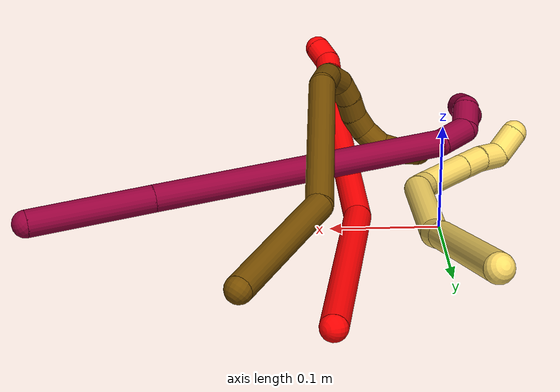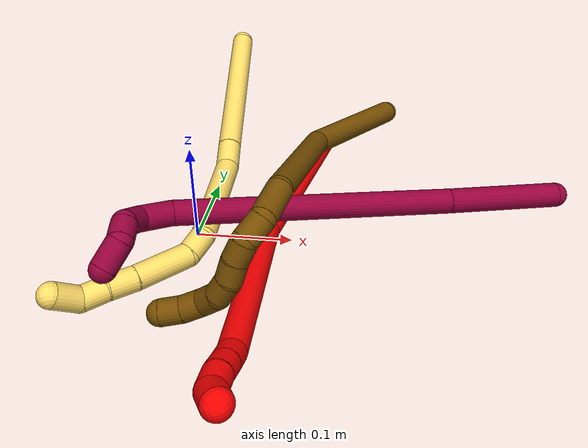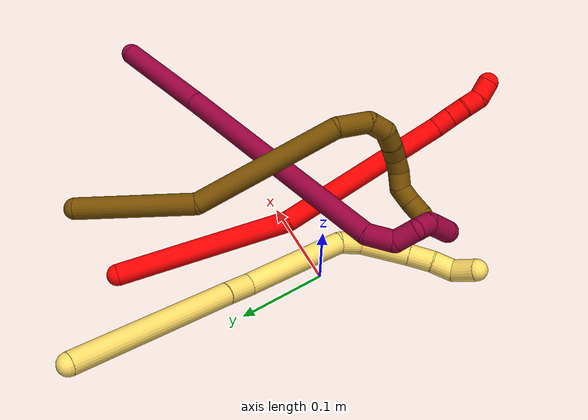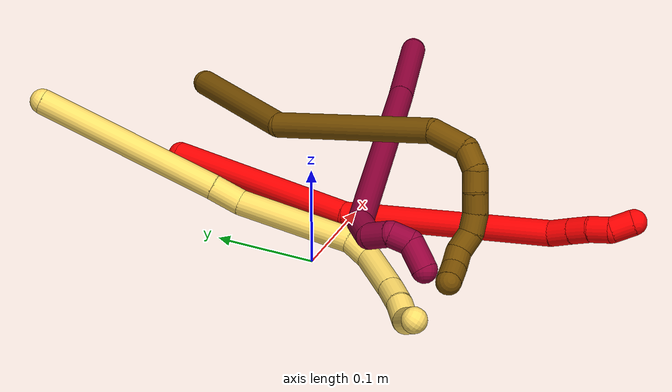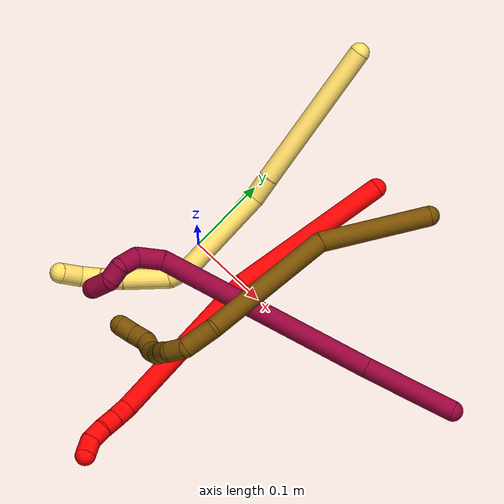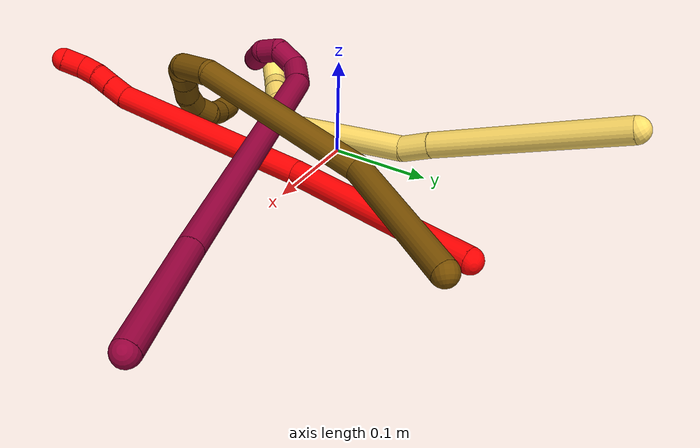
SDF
<sdf version="1.7">
 <world name="default">
  <model name="2">
   <static>0</static>
   <link name="2">
    <collision name="collision-cylinder-e_1_1_4">
     <pose>-0.006441 -0.065038 0.077579 0.697688 -0.063538 -0.023117</pose>
     <geometry><cylinder><radius>0.0125</radius><length>0.202879</length></cylinder></geometry>
     <surface>
      <friction><ode><mu>1.16</mu><mu2>1.16</mu2><slip1>0</slip1><slip2>0</slip2></ode></friction>
      <contact><ode><kp>1e+06</kp><kd>1</kd><max_vel>0</max_vel><min_depth>0.001</min_depth></ode></contact>
     </surface>
    </collision>
    <visual name="visual-cylinder-e_1_1_4">
     <pose>-0.006441 -0.065038 0.077579 0.697688 -0.063538 -0.023117</pose>
     <geometry><cylinder><radius>0.0125</radius><length>0.202879</length></cylinder></geometry>
     <material><ambient>1 0 0 1</ambient></material>
    </visual>
    <collision name="collision-cylinder-e_2_4_5">
     <pose>-0.012893 -0.216288 0.216952 0.948904 -0.000104 -5.3e-05</pose>
     <geometry><cylinder><radius>0.0125</radius><length>0.212141</length></cylinder></geometry>
     <surface>
      <friction><ode><mu>1.16</mu><mu2>1.16</mu2><slip1>0</slip1><slip2>0</slip2></ode></friction>
      <contact><ode><kp>1e+06</kp><kd>1</kd><max_vel>0</max_vel><min_depth>0.001</min_depth></ode></contact>
     </surface>
    </collision>
    <visual name="visual-cylinder-e_2_4_5">
     <pose>-0.012893 -0.216288 0.216952 0.948904 -0.000104 -5.3e-05</pose>
     <geometry><cylinder><radius>0.0125</radius><length>0.212141</length></cylinder></geometry>
     <material><ambient>1 0 0 1</ambient></material>
    </visual>
    <collision name="collision-cylinder-e_3_5_6">
     <pose>-0.010224 -0.311122 0.284792 0.959309 0.249205 0.13012</pose>
     <geometry><cylinder><radius>0.0125</radius><length>0.021735</length></cylinder></geometry>
     <surface>
      <friction><ode><mu>1.16</mu><mu2>1.16</mu2><slip1>0</slip1><slip2>0</slip2></ode></friction>
      <contact><ode><kp>1e+06</kp><kd>1</kd><max_vel>0</max_vel><min_depth>0.001</min_depth></ode></contact>
     </surface>
    </collision>
    <visual name="visual-cylinder-e_3_5_6">
     <pose>-0.010224 -0.311122 0.284792 0.959309 0.249205 0.13012</pose>
     <geometry><cylinder><radius>0.0125</radius><length>0.021735</length></cylinder></geometry>
     <material><ambient>1 0 0 1</ambient></material>
    </visual>
    <collision name="collision-cylinder-e_4_6_7">
     <pose>-0.005039 -0.327556 0.296635 0.932325 0.252033 0.127313</pose>
     <geometry><cylinder><radius>0.0125</radius><length>0.020088</length></cylinder></geometry>
     <surface>
      <friction><ode><mu>1.16</mu><mu2>1.16</mu2><slip1>0</slip1><slip2>0</slip2></ode></friction>
      <contact><ode><kp>1e+06</kp><kd>1</kd><max_vel>0</max_vel><min_depth>0.001</min_depth></ode></contact>
     </surface>
    </collision>
    <visual name="visual-cylinder-e_4_6_7">
     <pose>-0.005039 -0.327556 0.296635 0.932325 0.252033 0.127313</pose>
     <geometry><cylinder><radius>0.0125</radius><length>0.020088</length></cylinder></geometry>
     <material><ambient>1 0 0 1</ambient></material>
    </visual>
    <collision name="collision-cylinder-e_5_7_8">
     <pose>-0.001655 -0.343928 0.308673 0.940886 0.082744 0.042095</pose>
     <geometry><cylinder><radius>0.0125</radius><length>0.021262</length></cylinder></geometry>
     <surface>
      <friction><ode><mu>1.16</mu><mu2>1.16</mu2><slip1>0</slip1><slip2>0</slip2></ode></friction>
      <contact><ode><kp>1e+06</kp><kd>1</kd><max_vel>0</max_vel><min_depth>0.001</min_depth></ode></contact>
     </surface>
    </collision>
    <visual name="visual-cylinder-e_5_7_8">
     <pose>-0.001655 -0.343928 0.308673 0.940886 0.082744 0.042095</pose>
     <geometry><cylinder><radius>0.0125</radius><length>0.021262</length></cylinder></geometry>
     <material><ambient>1 0 0 1</ambient></material>
    </visual>
    <collision name="collision-cylinder-e_6_8_2">
     <pose>0.000784 -0.363175 0.316717 1.40365 0.143059 0.121003</pose>
     <geometry><cylinder><radius>0.0125</radius><length>0.021896</length></cylinder></geometry>
     <surface>
      <friction><ode><mu>1.16</mu><mu2>1.16</mu2><slip1>0</slip1><slip2>0</slip2></ode></friction>
      <contact><ode><kp>1e+06</kp><kd>1</kd><max_vel>0</max_vel><min_depth>0.001</min_depth></ode></contact>
     </surface>
    </collision>
    <visual name="visual-cylinder-e_6_8_2">
     <pose>0.000784 -0.363175 0.316717 1.40365 0.143059 0.121003</pose>
     <geometry><cylinder><radius>0.0125</radius><length>0.021896</length></cylinder></geometry>
     <material><ambient>1 0 0 1</ambient></material>
    </visual>
    <collision name="collision-sphere-2">
     <pose>0.002345 -0.37386 0.318519 0 -0 0</pose>
     <geometry><sphere><radius>0.0125</radius></sphere></geometry>
     <surface>
      <friction><ode><mu>1.16</mu><mu2>1.16</mu2><slip1>0</slip1><slip2>0</slip2></ode></friction>
      <contact><ode><kp>1e+06</kp><kd>1</kd><max_vel>0</max_vel><min_depth>0.001</min_depth></ode></contact>
     </surface>
    </collision>
    <visual name="visual-sphere-2">
     <pose>0.002345 -0.37386 0.318519 0 -0 0</pose>
     <geometry><sphere><radius>0.0125</radius></sphere></geometry>
     <material><ambient>1 0 0 1</ambient></material>
    </visual>
    <collision name="collision-sphere-4">
     <pose>-0.012882 -0.130076 0.155158 0 -0 0</pose>
     <geometry><sphere><radius>0.0125</radius></sphere></geometry>
     <surface>
      <friction><ode><mu>1.16</mu><mu2>1.16</mu2><slip1>0</slip1><slip2>0</slip2></ode></friction>
      <contact><ode><kp>1e+06</kp><kd>1</kd><max_vel>0</max_vel><min_depth>0.001</min_depth></ode></contact>
     </surface>
    </collision>
    <visual name="visual-sphere-4">
     <pose>-0.012882 -0.130076 0.155158 0 -0 0</pose>
     <geometry><sphere><radius>0.0125</radius></sphere></geometry>
     <material><ambient>1 0 0 1</ambient></material>
    </visual>
    <collision name="collision-sphere-1">
     <geometry><sphere><radius>0.0125</radius></sphere></geometry>
     <surface>
      <friction><ode><mu>1.16</mu><mu2>1.16</mu2><slip1>0</slip1><slip2>0</slip2></ode></friction>
      <contact><ode><kp>1e+06</kp><kd>1</kd><max_vel>0</max_vel><min_depth>0.001</min_depth></ode></contact>
     </surface>
    </collision>
    <visual name="visual-sphere-1">
     <geometry><sphere><radius>0.0125</radius></sphere></geometry>
     <material><ambient>1 0 0 1</ambient></material>
    </visual>
    <collision name="collision-sphere-8">
     <pose>-0.000777 -0.35249 0.314914 0 -0 0</pose>
     <geometry><sphere><radius>0.0125</radius></sphere></geometry>
     <surface>
      <friction><ode><mu>1.16</mu><mu2>1.16</mu2><slip1>0</slip1><slip2>0</slip2></ode></friction>
      <contact><ode><kp>1e+06</kp><kd>1</kd><max_vel>0</max_vel><min_depth>0.001</min_depth></ode></contact>
     </surface>
    </collision>
    <visual name="visual-sphere-8">
     <pose>-0.000777 -0.35249 0.314914 0 -0 0</pose>
     <geometry><sphere><radius>0.0125</radius></sphere></geometry>
     <material><ambient>1 0 0 1</ambient></material>
    </visual>
    <collision name="collision-sphere-5">
     <pose>-0.012904 -0.302499 0.278746 0 -0 0</pose>
     <geometry><sphere><radius>0.0125</radius></sphere></geometry>
     <surface>
      <friction><ode><mu>1.16</mu><mu2>1.16</mu2><slip1>0</slip1><slip2>0</slip2></ode></friction>
      <contact><ode><kp>1e+06</kp><kd>1</kd><max_vel>0</max_vel><min_depth>0.001</min_depth></ode></contact>
     </surface>
    </collision>
    <visual name="visual-sphere-5">
     <pose>-0.012904 -0.302499 0.278746 0 -0 0</pose>
     <geometry><sphere><radius>0.0125</radius></sphere></geometry>
     <material><ambient>1 0 0 1</ambient></material>
    </visual>
    <collision name="collision-sphere-6">
     <pose>-0.007543 -0.319746 0.290838 0 -0 0</pose>
     <geometry><sphere><radius>0.0125</radius></sphere></geometry>
     <surface>
      <friction><ode><mu>1.16</mu><mu2>1.16</mu2><slip1>0</slip1><slip2>0</slip2></ode></friction>
      <contact><ode><kp>1e+06</kp><kd>1</kd><max_vel>0</max_vel><min_depth>0.001</min_depth></ode></contact>
     </surface>
    </collision>
    <visual name="visual-sphere-6">
     <pose>-0.007543 -0.319746 0.290838 0 -0 0</pose>
     <geometry><sphere><radius>0.0125</radius></sphere></geometry>
     <material><ambient>1 0 0 1</ambient></material>
    </visual>
    <collision name="collision-sphere-7">
     <pose>-0.002534 -0.335367 0.302432 0 -0 0</pose>
     <geometry><sphere><radius>0.0125</radius></sphere></geometry>
     <surface>
      <friction><ode><mu>1.16</mu><mu2>1.16</mu2><slip1>0</slip1><slip2>0</slip2></ode></friction>
      <contact><ode><kp>1e+06</kp><kd>1</kd><max_vel>0</max_vel><min_depth>0.001</min_depth></ode></contact>
     </surface>
    </collision>
    <visual name="visual-sphere-7">
     <pose>-0.002534 -0.335367 0.302432 0 -0 0</pose>
     <geometry><sphere><radius>0.0125</radius></sphere></geometry>
     <material><ambient>1 0 0 1</ambient></material>
    </visual>
    <inertial>
     <pose>-0.008766 -0.17537 0.17482 0 -0 0</pose>
     <mass>0.5</mass>
     <inertia>
      <ixx>0.001497</ixx>
      <ixy>0</ixy>
      <ixz>0</ixz>
      <iyy>0.000967</iyy>
      <iyz>0</iyz>
      <izz>0.001179</izz>
     </inertia>
    </inertial>
   </link>
   <pose>0.110398 0.199268 0.011647 -2.06073 -1.27538 2.74801</pose>
  </model>
  <model name="5">
   <static>0</static>
   <link name="5">
    <collision name="collision-cylinder-e_1_1_4">
     <pose>-0.004509 -0.034042 -0.087375 2.77008 -0.048049 -0.254354</pose>
     <geometry><cylinder><radius>0.0125</radius><length>0.187762</length></cylinder></geometry>
     <surface>
      <friction><ode><mu>1.16</mu><mu2>1.16</mu2><slip1>0</slip1><slip2>0</slip2></ode></friction>
      <contact><ode><kp>1e+06</kp><kd>1</kd><max_vel>0</max_vel><min_depth>0.001</min_depth></ode></contact>
     </surface>
    </collision>
    <visual name="visual-cylinder-e_1_1_4">
     <pose>-0.004509 -0.034042 -0.087375 2.77008 -0.048049 -0.254354</pose>
     <geometry><cylinder><radius>0.0125</radius><length>0.187762</length></cylinder></geometry>
     <material><ambient>1 0.858824 0.4 1</ambient></material>
    </visual>
    <collision name="collision-cylinder-e_2_4_5">
     <pose>-0.010077 -0.072911 -0.189249 2.82019 -0.069185 -0.420661</pose>
     <geometry><cylinder><radius>0.0125</radius><length>0.030635</length></cylinder></geometry>
     <surface>
      <friction><ode><mu>1.16</mu><mu2>1.16</mu2><slip1>0</slip1><slip2>0</slip2></ode></friction>
      <contact><ode><kp>1e+06</kp><kd>1</kd><max_vel>0</max_vel><min_depth>0.001</min_depth></ode></contact>
     </surface>
    </collision>
    <visual name="visual-cylinder-e_2_4_5">
     <pose>-0.010077 -0.072911 -0.189249 2.82019 -0.069185 -0.420661</pose>
     <geometry><cylinder><radius>0.0125</radius><length>0.030635</length></cylinder></geometry>
     <material><ambient>1 0.858824 0.4 1</ambient></material>
    </visual>
    <collision name="collision-cylinder-e_3_5_6">
     <pose>-0.012451 -0.111535 -0.251789 2.52854 -0.022384 -0.070697</pose>
     <geometry><cylinder><radius>0.0125</radius><length>0.117506</length></cylinder></geometry>
     <surface>
      <friction><ode><mu>1.16</mu><mu2>1.16</mu2><slip1>0</slip1><slip2>0</slip2></ode></friction>
      <contact><ode><kp>1e+06</kp><kd>1</kd><max_vel>0</max_vel><min_depth>0.001</min_depth></ode></contact>
     </surface>
    </collision>
    <visual name="visual-cylinder-e_3_5_6">
     <pose>-0.012451 -0.111535 -0.251789 2.52854 -0.022384 -0.070697</pose>
     <geometry><cylinder><radius>0.0125</radius><length>0.117506</length></cylinder></geometry>
     <material><ambient>1 0.858824 0.4 1</ambient></material>
    </visual>
    <collision name="collision-cylinder-e_4_6_7">
     <pose>-0.01933 -0.152166 -0.309361 2.51942 -0.442972 -1.22192</pose>
     <geometry><cylinder><radius>0.0125</radius><length>0.025962</length></cylinder></geometry>
     <surface>
      <friction><ode><mu>1.16</mu><mu2>1.16</mu2><slip1>0</slip1><slip2>0</slip2></ode></friction>
      <contact><ode><kp>1e+06</kp><kd>1</kd><max_vel>0</max_vel><min_depth>0.001</min_depth></ode></contact>
     </surface>
    </collision>
    <visual name="visual-cylinder-e_4_6_7">
     <pose>-0.01933 -0.152166 -0.309361 2.51942 -0.442972 -1.22192</pose>
     <geometry><cylinder><radius>0.0125</radius><length>0.025962</length></cylinder></geometry>
     <material><ambient>1 0.858824 0.4 1</ambient></material>
    </visual>
    <collision name="collision-cylinder-e_5_7_8">
     <pose>-0.042435 -0.178926 -0.328763 2.03081 -0.66789 -1.01958</pose>
     <geometry><cylinder><radius>0.0125</radius><length>0.056644</length></cylinder></geometry>
     <surface>
      <friction><ode><mu>1.16</mu><mu2>1.16</mu2><slip1>0</slip1><slip2>0</slip2></ode></friction>
      <contact><ode><kp>1e+06</kp><kd>1</kd><max_vel>0</max_vel><min_depth>0.001</min_depth></ode></contact>
     </surface>
    </collision>
    <visual name="visual-cylinder-e_5_7_8">
     <pose>-0.042435 -0.178926 -0.328763 2.03081 -0.66789 -1.01958</pose>
     <geometry><cylinder><radius>0.0125</radius><length>0.056644</length></cylinder></geometry>
     <material><ambient>1 0.858824 0.4 1</ambient></material>
    </visual>
    <collision name="collision-cylinder-e_6_8_9">
     <pose>-0.068815 -0.208668 -0.342231 1.92191 -0.701875 -0.965283</pose>
     <geometry><cylinder><radius>0.0125</radius><length>0.027382</length></cylinder></geometry>
     <surface>
      <friction><ode><mu>1.16</mu><mu2>1.16</mu2><slip1>0</slip1><slip2>0</slip2></ode></friction>
      <contact><ode><kp>1e+06</kp><kd>1</kd><max_vel>0</max_vel><min_depth>0.001</min_depth></ode></contact>
     </surface>
    </collision>
    <visual name="visual-cylinder-e_6_8_9">
     <pose>-0.068815 -0.208668 -0.342231 1.92191 -0.701875 -0.965283</pose>
     <geometry><cylinder><radius>0.0125</radius><length>0.027382</length></cylinder></geometry>
     <material><ambient>1 0.858824 0.4 1</ambient></material>
    </visual>
    <collision name="collision-cylinder-e_7_9_10">
     <pose>-0.087029 -0.226045 -0.34941 2.01336 -0.842148 -1.23196</pose>
     <geometry><cylinder><radius>0.0125</radius><length>0.025128</length></cylinder></geometry>
     <surface>
      <friction><ode><mu>1.16</mu><mu2>1.16</mu2><slip1>0</slip1><slip2>0</slip2></ode></friction>
      <contact><ode><kp>1e+06</kp><kd>1</kd><max_vel>0</max_vel><min_depth>0.001</min_depth></ode></contact>
     </surface>
    </collision>
    <visual name="visual-cylinder-e_7_9_10">
     <pose>-0.087029 -0.226045 -0.34941 2.01336 -0.842148 -1.23196</pose>
     <geometry><cylinder><radius>0.0125</radius><length>0.025128</length></cylinder></geometry>
     <material><ambient>1 0.858824 0.4 1</ambient></material>
    </visual>
    <collision name="collision-cylinder-e_8_10_2">
     <pose>-0.100479 -0.247464 -0.351852 1.48866 -0.28515 -0.26291</pose>
     <geometry><cylinder><radius>0.0125</radius><length>0.028981</length></cylinder></geometry>
     <surface>
      <friction><ode><mu>1.16</mu><mu2>1.16</mu2><slip1>0</slip1><slip2>0</slip2></ode></friction>
      <contact><ode><kp>1e+06</kp><kd>1</kd><max_vel>0</max_vel><min_depth>0.001</min_depth></ode></contact>
     </surface>
    </collision>
    <visual name="visual-cylinder-e_8_10_2">
     <pose>-0.100479 -0.247464 -0.351852 1.48866 -0.28515 -0.26291</pose>
     <geometry><cylinder><radius>0.0125</radius><length>0.028981</length></cylinder></geometry>
     <material><ambient>1 0.858824 0.4 1</ambient></material>
    </visual>
    <collision name="collision-sphere-2">
     <pose>-0.104555 -0.261322 -0.350711 0 -0 0</pose>
     <geometry><sphere><radius>0.0125</radius></sphere></geometry>
     <surface>
      <friction><ode><mu>1.16</mu><mu2>1.16</mu2><slip1>0</slip1><slip2>0</slip2></ode></friction>
      <contact><ode><kp>1e+06</kp><kd>1</kd><max_vel>0</max_vel><min_depth>0.001</min_depth></ode></contact>
     </surface>
    </collision>
    <visual name="visual-sphere-2">
     <pose>-0.104555 -0.261322 -0.350711 0 -0 0</pose>
     <geometry><sphere><radius>0.0125</radius></sphere></geometry>
     <material><ambient>1 0.858824 0.4 1</ambient></material>
    </visual>
    <collision name="collision-sphere-10">
     <pose>-0.096403 -0.233605 -0.352993 0 -0 0</pose>
     <geometry><sphere><radius>0.0125</radius></sphere></geometry>
     <surface>
      <friction><ode><mu>1.16</mu><mu2>1.16</mu2><slip1>0</slip1><slip2>0</slip2></ode></friction>
      <contact><ode><kp>1e+06</kp><kd>1</kd><max_vel>0</max_vel><min_depth>0.001</min_depth></ode></contact>
     </surface>
    </collision>
    <visual name="visual-sphere-10">
     <pose>-0.096403 -0.233605 -0.352993 0 -0 0</pose>
     <geometry><sphere><radius>0.0125</radius></sphere></geometry>
     <material><ambient>1 0.858824 0.4 1</ambient></material>
    </visual>
    <collision name="collision-sphere-9">
     <pose>-0.077655 -0.218485 -0.345827 0 -0 0</pose>
     <geometry><sphere><radius>0.0125</radius></sphere></geometry>
     <surface>
      <friction><ode><mu>1.16</mu><mu2>1.16</mu2><slip1>0</slip1><slip2>0</slip2></ode></friction>
      <contact><ode><kp>1e+06</kp><kd>1</kd><max_vel>0</max_vel><min_depth>0.001</min_depth></ode></contact>
     </surface>
    </collision>
    <visual name="visual-sphere-9">
     <pose>-0.077655 -0.218485 -0.345827 0 -0 0</pose>
     <geometry><sphere><radius>0.0125</radius></sphere></geometry>
     <material><ambient>1 0.858824 0.4 1</ambient></material>
    </visual>
    <collision name="collision-sphere-4">
     <pose>-0.009018 -0.068084 -0.17475 0 -0 0</pose>
     <geometry><sphere><radius>0.0125</radius></sphere></geometry>
     <surface>
      <friction><ode><mu>1.16</mu><mu2>1.16</mu2><slip1>0</slip1><slip2>0</slip2></ode></friction>
      <contact><ode><kp>1e+06</kp><kd>1</kd><max_vel>0</max_vel><min_depth>0.001</min_depth></ode></contact>
     </surface>
    </collision>
    <visual name="visual-sphere-4">
     <pose>-0.009018 -0.068084 -0.17475 0 -0 0</pose>
     <geometry><sphere><radius>0.0125</radius></sphere></geometry>
     <material><ambient>1 0.858824 0.4 1</ambient></material>
    </visual>
    <collision name="collision-sphere-1">
     <geometry><sphere><radius>0.0125</radius></sphere></geometry>
     <surface>
      <friction><ode><mu>1.16</mu><mu2>1.16</mu2><slip1>0</slip1><slip2>0</slip2></ode></friction>
      <contact><ode><kp>1e+06</kp><kd>1</kd><max_vel>0</max_vel><min_depth>0.001</min_depth></ode></contact>
     </surface>
    </collision>
    <visual name="visual-sphere-1">
     <geometry><sphere><radius>0.0125</radius></sphere></geometry>
     <material><ambient>1 0.858824 0.4 1</ambient></material>
    </visual>
    <collision name="collision-sphere-8">
     <pose>-0.059976 -0.198851 -0.338635 0 -0 0</pose>
     <geometry><sphere><radius>0.0125</radius></sphere></geometry>
     <surface>
      <friction><ode><mu>1.16</mu><mu2>1.16</mu2><slip1>0</slip1><slip2>0</slip2></ode></friction>
      <contact><ode><kp>1e+06</kp><kd>1</kd><max_vel>0</max_vel><min_depth>0.001</min_depth></ode></contact>
     </surface>
    </collision>
    <visual name="visual-sphere-8">
     <pose>-0.059976 -0.198851 -0.338635 0 -0 0</pose>
     <geometry><sphere><radius>0.0125</radius></sphere></geometry>
     <material><ambient>1 0.858824 0.4 1</ambient></material>
    </visual>
    <collision name="collision-sphere-5">
     <pose>-0.011136 -0.077738 -0.203747 0 -0 0</pose>
     <geometry><sphere><radius>0.0125</radius></sphere></geometry>
     <surface>
      <friction><ode><mu>1.16</mu><mu2>1.16</mu2><slip1>0</slip1><slip2>0</slip2></ode></friction>
      <contact><ode><kp>1e+06</kp><kd>1</kd><max_vel>0</max_vel><min_depth>0.001</min_depth></ode></contact>
     </surface>
    </collision>
    <visual name="visual-sphere-5">
     <pose>-0.011136 -0.077738 -0.203747 0 -0 0</pose>
     <geometry><sphere><radius>0.0125</radius></sphere></geometry>
     <material><ambient>1 0.858824 0.4 1</ambient></material>
    </visual>
    <collision name="collision-sphere-6">
     <pose>-0.013766 -0.145331 -0.29983 0 -0 0</pose>
     <geometry><sphere><radius>0.0125</radius></sphere></geometry>
     <surface>
      <friction><ode><mu>1.16</mu><mu2>1.16</mu2><slip1>0</slip1><slip2>0</slip2></ode></friction>
      <contact><ode><kp>1e+06</kp><kd>1</kd><max_vel>0</max_vel><min_depth>0.001</min_depth></ode></contact>
     </surface>
    </collision>
    <visual name="visual-sphere-6">
     <pose>-0.013766 -0.145331 -0.29983 0 -0 0</pose>
     <geometry><sphere><radius>0.0125</radius></sphere></geometry>
     <material><ambient>1 0.858824 0.4 1</ambient></material>
    </visual>
    <collision name="collision-sphere-7">
     <pose>-0.024894 -0.159001 -0.318891 0 -0 0</pose>
     <geometry><sphere><radius>0.0125</radius></sphere></geometry>
     <surface>
      <friction><ode><mu>1.16</mu><mu2>1.16</mu2><slip1>0</slip1><slip2>0</slip2></ode></friction>
      <contact><ode><kp>1e+06</kp><kd>1</kd><max_vel>0</max_vel><min_depth>0.001</min_depth></ode></contact>
     </surface>
    </collision>
    <visual name="visual-sphere-7">
     <pose>-0.024894 -0.159001 -0.318891 0 -0 0</pose>
     <geometry><sphere><radius>0.0125</radius></sphere></geometry>
     <material><ambient>1 0.858824 0.4 1</ambient></material>
    </visual>
    <inertial>
     <pose>-0.025014 -0.108765 -0.213584 0 -0 0</pose>
     <mass>0.5</mass>
     <inertia>
      <ixx>0.000518</ixx>
      <ixy>0</ixy>
      <ixz>0</ixz>
      <iyy>-0.000802</iyy>
      <iyz>0</iyz>
      <izz>0.000323</izz>
     </inertia>
    </inertial>
   </link>
   <pose>-0.005039 0.287235 0.109918 -0.843328 -0.477537 -0.025693</pose>
  </model>
  <model name="8">
   <static>0</static>
   <link name="8">
    <collision name="collision-cylinder-e_1_1_4">
     <pose>-0.044949 -0.009601 -0.035104 2.87463 -0.890202 -2.5928</pose>
     <geometry><cylinder><radius>0.0125</radius><length>0.11567</length></cylinder></geometry>
     <surface>
      <friction><ode><mu>1.16</mu><mu2>1.16</mu2><slip1>0</slip1><slip2>0</slip2></ode></friction>
      <contact><ode><kp>1e+06</kp><kd>1</kd><max_vel>0</max_vel><min_depth>0.001</min_depth></ode></contact>
     </surface>
    </collision>
    <visual name="visual-cylinder-e_1_1_4">
     <pose>-0.044949 -0.009601 -0.035104 2.87463 -0.890202 -2.5928</pose>
     <geometry><cylinder><radius>0.0125</radius><length>0.11567</length></cylinder></geometry>
     <material><ambient>0.584314 0 0.227451 1</ambient></material>
    </visual>
    <collision name="collision-cylinder-e_2_4_5">
     <pose>-0.198404 -0.039784 -0.152899 2.89764 -0.905053 -2.64762</pose>
     <geometry><cylinder><radius>0.0125</radius><length>0.275933</length></cylinder></geometry>
     <surface>
      <friction><ode><mu>1.16</mu><mu2>1.16</mu2><slip1>0</slip1><slip2>0</slip2></ode></friction>
      <contact><ode><kp>1e+06</kp><kd>1</kd><max_vel>0</max_vel><min_depth>0.001</min_depth></ode></contact>
     </surface>
    </collision>
    <visual name="visual-cylinder-e_2_4_5">
     <pose>-0.198404 -0.039784 -0.152899 2.89764 -0.905053 -2.64762</pose>
     <geometry><cylinder><radius>0.0125</radius><length>0.275933</length></cylinder></geometry>
     <material><ambient>0.584314 0 0.227451 1</ambient></material>
    </visual>
    <collision name="collision-cylinder-e_3_5_6">
     <pose>-0.317703 -0.069037 -0.244604 2.3756 -0.712016 -1.49072</pose>
     <geometry><cylinder><radius>0.0125</radius><length>0.033043</length></cylinder></geometry>
     <surface>
      <friction><ode><mu>1.16</mu><mu2>1.16</mu2><slip1>0</slip1><slip2>0</slip2></ode></friction>
      <contact><ode><kp>1e+06</kp><kd>1</kd><max_vel>0</max_vel><min_depth>0.001</min_depth></ode></contact>
     </surface>
    </collision>
    <visual name="visual-cylinder-e_3_5_6">
     <pose>-0.317703 -0.069037 -0.244604 2.3756 -0.712016 -1.49072</pose>
     <geometry><cylinder><radius>0.0125</radius><length>0.033043</length></cylinder></geometry>
     <material><ambient>0.584314 0 0.227451 1</ambient></material>
    </visual>
    <collision name="collision-cylinder-e_4_6_7">
     <pose>-0.332196 -0.090361 -0.254613 1.64924 -0.283536 -0.306349</pose>
     <geometry><cylinder><radius>0.0125</radius><length>0.026441</length></cylinder></geometry>
     <surface>
      <friction><ode><mu>1.16</mu><mu2>1.16</mu2><slip1>0</slip1><slip2>0</slip2></ode></friction>
      <contact><ode><kp>1e+06</kp><kd>1</kd><max_vel>0</max_vel><min_depth>0.001</min_depth></ode></contact>
     </surface>
    </collision>
    <visual name="visual-cylinder-e_4_6_7">
     <pose>-0.332196 -0.090361 -0.254613 1.64924 -0.283536 -0.306349</pose>
     <geometry><cylinder><radius>0.0125</radius><length>0.026441</length></cylinder></geometry>
     <material><ambient>0.584314 0 0.227451 1</ambient></material>
    </visual>
    <collision name="collision-cylinder-e_5_7_8">
     <pose>-0.332572 -0.111502 -0.260418 2.08647 0.328292 0.55395</pose>
     <geometry><cylinder><radius>0.0125</radius><length>0.020611</length></cylinder></geometry>
     <surface>
      <friction><ode><mu>1.16</mu><mu2>1.16</mu2><slip1>0</slip1><slip2>0</slip2></ode></friction>
      <contact><ode><kp>1e+06</kp><kd>1</kd><max_vel>0</max_vel><min_depth>0.001</min_depth></ode></contact>
     </surface>
    </collision>
    <visual name="visual-cylinder-e_5_7_8">
     <pose>-0.332572 -0.111502 -0.260418 2.08647 0.328292 0.55395</pose>
     <geometry><cylinder><radius>0.0125</radius><length>0.020611</length></cylinder></geometry>
     <material><ambient>0.584314 0 0.227451 1</ambient></material>
    </visual>
    <collision name="collision-cylinder-e_6_8_2">
     <pose>-0.327864 -0.125086 -0.278356 2.77119 0.098045 0.512251</pose>
     <geometry><cylinder><radius>0.0125</radius><length>0.028302</length></cylinder></geometry>
     <surface>
      <friction><ode><mu>1.16</mu><mu2>1.16</mu2><slip1>0</slip1><slip2>0</slip2></ode></friction>
      <contact><ode><kp>1e+06</kp><kd>1</kd><max_vel>0</max_vel><min_depth>0.001</min_depth></ode></contact>
     </surface>
    </collision>
    <visual name="visual-cylinder-e_6_8_2">
     <pose>-0.327864 -0.125086 -0.278356 2.77119 0.098045 0.512251</pose>
     <geometry><cylinder><radius>0.0125</radius><length>0.028302</length></cylinder></geometry>
     <material><ambient>0.584314 0 0.227451 1</ambient></material>
    </visual>
    <collision name="collision-sphere-2">
     <pose>-0.326479 -0.130184 -0.291484 0 -0 0</pose>
     <geometry><sphere><radius>0.0125</radius></sphere></geometry>
     <surface>
      <friction><ode><mu>1.16</mu><mu2>1.16</mu2><slip1>0</slip1><slip2>0</slip2></ode></friction>
      <contact><ode><kp>1e+06</kp><kd>1</kd><max_vel>0</max_vel><min_depth>0.001</min_depth></ode></contact>
     </surface>
    </collision>
    <visual name="visual-sphere-2">
     <pose>-0.326479 -0.130184 -0.291484 0 -0 0</pose>
     <geometry><sphere><radius>0.0125</radius></sphere></geometry>
     <material><ambient>0.584314 0 0.227451 1</ambient></material>
    </visual>
    <collision name="collision-sphere-4">
     <pose>-0.089899 -0.019201 -0.070208 0 -0 0</pose>
     <geometry><sphere><radius>0.0125</radius></sphere></geometry>
     <surface>
      <friction><ode><mu>1.16</mu><mu2>1.16</mu2><slip1>0</slip1><slip2>0</slip2></ode></friction>
      <contact><ode><kp>1e+06</kp><kd>1</kd><max_vel>0</max_vel><min_depth>0.001</min_depth></ode></contact>
     </surface>
    </collision>
    <visual name="visual-sphere-4">
     <pose>-0.089899 -0.019201 -0.070208 0 -0 0</pose>
     <geometry><sphere><radius>0.0125</radius></sphere></geometry>
     <material><ambient>0.584314 0 0.227451 1</ambient></material>
    </visual>
    <collision name="collision-sphere-1">
     <geometry><sphere><radius>0.0125</radius></sphere></geometry>
     <surface>
      <friction><ode><mu>1.16</mu><mu2>1.16</mu2><slip1>0</slip1><slip2>0</slip2></ode></friction>
      <contact><ode><kp>1e+06</kp><kd>1</kd><max_vel>0</max_vel><min_depth>0.001</min_depth></ode></contact>
     </surface>
    </collision>
    <visual name="visual-sphere-1">
     <geometry><sphere><radius>0.0125</radius></sphere></geometry>
     <material><ambient>0.584314 0 0.227451 1</ambient></material>
    </visual>
    <collision name="collision-sphere-8">
     <pose>-0.329249 -0.119988 -0.265228 0 -0 0</pose>
     <geometry><sphere><radius>0.0125</radius></sphere></geometry>
     <surface>
      <friction><ode><mu>1.16</mu><mu2>1.16</mu2><slip1>0</slip1><slip2>0</slip2></ode></friction>
      <contact><ode><kp>1e+06</kp><kd>1</kd><max_vel>0</max_vel><min_depth>0.001</min_depth></ode></contact>
     </surface>
    </collision>
    <visual name="visual-sphere-8">
     <pose>-0.329249 -0.119988 -0.265228 0 -0 0</pose>
     <geometry><sphere><radius>0.0125</radius></sphere></geometry>
     <material><ambient>0.584314 0 0.227451 1</ambient></material>
    </visual>
    <collision name="collision-sphere-5">
     <pose>-0.306909 -0.060366 -0.23559 0 -0 0</pose>
     <geometry><sphere><radius>0.0125</radius></sphere></geometry>
     <surface>
      <friction><ode><mu>1.16</mu><mu2>1.16</mu2><slip1>0</slip1><slip2>0</slip2></ode></friction>
      <contact><ode><kp>1e+06</kp><kd>1</kd><max_vel>0</max_vel><min_depth>0.001</min_depth></ode></contact>
     </surface>
    </collision>
    <visual name="visual-sphere-5">
     <pose>-0.306909 -0.060366 -0.23559 0 -0 0</pose>
     <geometry><sphere><radius>0.0125</radius></sphere></geometry>
     <material><ambient>0.584314 0 0.227451 1</ambient></material>
    </visual>
    <collision name="collision-sphere-6">
     <pose>-0.328498 -0.077708 -0.253618 0 -0 0</pose>
     <geometry><sphere><radius>0.0125</radius></sphere></geometry>
     <surface>
      <friction><ode><mu>1.16</mu><mu2>1.16</mu2><slip1>0</slip1><slip2>0</slip2></ode></friction>
      <contact><ode><kp>1e+06</kp><kd>1</kd><max_vel>0</max_vel><min_depth>0.001</min_depth></ode></contact>
     </surface>
    </collision>
    <visual name="visual-sphere-6">
     <pose>-0.328498 -0.077708 -0.253618 0 -0 0</pose>
     <geometry><sphere><radius>0.0125</radius></sphere></geometry>
     <material><ambient>0.584314 0 0.227451 1</ambient></material>
    </visual>
    <collision name="collision-sphere-7">
     <pose>-0.335895 -0.103015 -0.255608 0 -0 0</pose>
     <geometry><sphere><radius>0.0125</radius></sphere></geometry>
     <surface>
      <friction><ode><mu>1.16</mu><mu2>1.16</mu2><slip1>0</slip1><slip2>0</slip2></ode></friction>
      <contact><ode><kp>1e+06</kp><kd>1</kd><max_vel>0</max_vel><min_depth>0.001</min_depth></ode></contact>
     </surface>
    </collision>
    <visual name="visual-sphere-7">
     <pose>-0.335895 -0.103015 -0.255608 0 -0 0</pose>
     <geometry><sphere><radius>0.0125</radius></sphere></geometry>
     <material><ambient>0.584314 0 0.227451 1</ambient></material>
    </visual>
    <inertial>
     <pose>-0.190721 -0.045194 -0.148621 0 -0 0</pose>
     <mass>0.5</mass>
     <inertia>
      <ixx>-0.00161</ixx>
      <ixy>0</ixy>
      <ixz>0</ixz>
      <iyy>0.001215</iyy>
      <iyz>0</iyz>
      <izz>0.001761</izz>
     </inertia>
    </inertial>
   </link>
   <pose>0.369516 0.056209 0.039458 -0.403788 0.61872 -0.104928</pose>
  </model>
  <model name="12">
   <static>0</static>
   <link name="12">
    <collision name="collision-cylinder-e_1_1_4">
     <pose>-0.008736 -0.041539 0.054796 0.648635 -0.126375 -0.042536</pose>
     <geometry><cylinder><radius>0.0125</radius><length>0.138628</length></cylinder></geometry>
     <surface>
      <friction><ode><mu>1.16</mu><mu2>1.16</mu2><slip1>0</slip1><slip2>0</slip2></ode></friction>
      <contact><ode><kp>1e+06</kp><kd>1</kd><max_vel>0</max_vel><min_depth>0.001</min_depth></ode></contact>
     </surface>
    </collision>
    <visual name="visual-cylinder-e_1_1_4">
     <pose>-0.008736 -0.041539 0.054796 0.648635 -0.126375 -0.042536</pose>
     <geometry><cylinder><radius>0.0125</radius><length>0.138628</length></cylinder></geometry>
     <material><ambient>0.466667 0.301961 0 1</ambient></material>
    </visual>
    <collision name="collision-cylinder-e_2_4_5">
     <pose>0.011369 -0.141015 0.169141 0.771695 0.334128 0.136789</pose>
     <geometry><cylinder><radius>0.0125</radius><length>0.175893</length></cylinder></geometry>
     <surface>
      <friction><ode><mu>1.16</mu><mu2>1.16</mu2><slip1>0</slip1><slip2>0</slip2></ode></friction>
      <contact><ode><kp>1e+06</kp><kd>1</kd><max_vel>0</max_vel><min_depth>0.001</min_depth></ode></contact>
     </surface>
    </collision>
    <visual name="visual-cylinder-e_2_4_5">
     <pose>0.011369 -0.141015 0.169141 0.771695 0.334128 0.136789</pose>
     <geometry><cylinder><radius>0.0125</radius><length>0.175893</length></cylinder></geometry>
     <material><ambient>0.466667 0.301961 0 1</ambient></material>
    </visual>
    <collision name="collision-cylinder-e_3_5_6">
     <pose>0.04065 -0.216294 0.238689 1.04772 0.021923 0.012665</pose>
     <geometry><cylinder><radius>0.0125</radius><length>0.040045</length></cylinder></geometry>
     <surface>
      <friction><ode><mu>1.16</mu><mu2>1.16</mu2><slip1>0</slip1><slip2>0</slip2></ode></friction>
      <contact><ode><kp>1e+06</kp><kd>1</kd><max_vel>0</max_vel><min_depth>0.001</min_depth></ode></contact>
     </surface>
    </collision>
    <visual name="visual-cylinder-e_3_5_6">
     <pose>0.04065 -0.216294 0.238689 1.04772 0.021923 0.012665</pose>
     <geometry><cylinder><radius>0.0125</radius><length>0.040045</length></cylinder></geometry>
     <material><ambient>0.466667 0.301961 0 1</ambient></material>
    </visual>
    <collision name="collision-cylinder-e_4_6_7">
     <pose>0.034611 -0.242964 0.251808 1.24813 -0.58241 -0.425123</pose>
     <geometry><cylinder><radius>0.0125</radius><length>0.023555</length></cylinder></geometry>
     <surface>
      <friction><ode><mu>1.16</mu><mu2>1.16</mu2><slip1>0</slip1><slip2>0</slip2></ode></friction>
      <contact><ode><kp>1e+06</kp><kd>1</kd><max_vel>0</max_vel><min_depth>0.001</min_depth></ode></contact>
     </surface>
    </collision>
    <visual name="visual-cylinder-e_4_6_7">
     <pose>0.034611 -0.242964 0.251808 1.24813 -0.58241 -0.425123</pose>
     <geometry><cylinder><radius>0.0125</radius><length>0.023555</length></cylinder></geometry>
     <material><ambient>0.466667 0.301961 0 1</ambient></material>
    </visual>
    <collision name="collision-cylinder-e_5_7_8">
     <pose>0.020439 -0.258729 0.252625 1.91419 -0.844386 -1.13532</pose>
     <geometry><cylinder><radius>0.0125</radius><length>0.020584</length></cylinder></geometry>
     <surface>
      <friction><ode><mu>1.16</mu><mu2>1.16</mu2><slip1>0</slip1><slip2>0</slip2></ode></friction>
      <contact><ode><kp>1e+06</kp><kd>1</kd><max_vel>0</max_vel><min_depth>0.001</min_depth></ode></contact>
     </surface>
    </collision>
    <visual name="visual-cylinder-e_5_7_8">
     <pose>0.020439 -0.258729 0.252625 1.91419 -0.844386 -1.13532</pose>
     <geometry><cylinder><radius>0.0125</radius><length>0.020584</length></cylinder></geometry>
     <material><ambient>0.466667 0.301961 0 1</ambient></material>
    </visual>
    <collision name="collision-cylinder-e_6_8_9">
     <pose>0.006001 -0.271637 0.246697 2.08161 -0.73781 -1.16652</pose>
     <geometry><cylinder><radius>0.0125</radius><length>0.020052</length></cylinder></geometry>
     <surface>
      <friction><ode><mu>1.16</mu><mu2>1.16</mu2><slip1>0</slip1><slip2>0</slip2></ode></friction>
      <contact><ode><kp>1e+06</kp><kd>1</kd><max_vel>0</max_vel><min_depth>0.001</min_depth></ode></contact>
     </surface>
    </collision>
    <visual name="visual-cylinder-e_6_8_9">
     <pose>0.006001 -0.271637 0.246697 2.08161 -0.73781 -1.16652</pose>
     <geometry><cylinder><radius>0.0125</radius><length>0.020052</length></cylinder></geometry>
     <material><ambient>0.466667 0.301961 0 1</ambient></material>
    </visual>
    <collision name="collision-cylinder-e_7_9_10">
     <pose>-0.009354 -0.282595 0.240656 2.06443 -1.03655 -1.52417</pose>
     <geometry><cylinder><radius>0.0125</radius><length>0.020009</length></cylinder></geometry>
     <surface>
      <friction><ode><mu>1.16</mu><mu2>1.16</mu2><slip1>0</slip1><slip2>0</slip2></ode></friction>
      <contact><ode><kp>1e+06</kp><kd>1</kd><max_vel>0</max_vel><min_depth>0.001</min_depth></ode></contact>
     </surface>
    </collision>
    <visual name="visual-cylinder-e_7_9_10">
     <pose>-0.009354 -0.282595 0.240656 2.06443 -1.03655 -1.52417</pose>
     <geometry><cylinder><radius>0.0125</radius><length>0.020009</length></cylinder></geometry>
     <material><ambient>0.466667 0.301961 0 1</ambient></material>
    </visual>
    <collision name="collision-cylinder-e_8_10_11">
     <pose>-0.028406 -0.287767 0.236883 2.67414 -1.426 -2.60429</pose>
     <geometry><cylinder><radius>0.0125</radius><length>0.021105</length></cylinder></geometry>
     <surface>
      <friction><ode><mu>1.16</mu><mu2>1.16</mu2><slip1>0</slip1><slip2>0</slip2></ode></friction>
      <contact><ode><kp>1e+06</kp><kd>1</kd><max_vel>0</max_vel><min_depth>0.001</min_depth></ode></contact>
     </surface>
    </collision>
    <visual name="visual-cylinder-e_8_10_11">
     <pose>-0.028406 -0.287767 0.236883 2.67414 -1.426 -2.60429</pose>
     <geometry><cylinder><radius>0.0125</radius><length>0.021105</length></cylinder></geometry>
     <material><ambient>0.466667 0.301961 0 1</ambient></material>
    </visual>
    <collision name="collision-cylinder-e_9_11_12">
     <pose>-0.047766 -0.291052 0.239249 0.609148 -1.0997 -0.380673</pose>
     <geometry><cylinder><radius>0.0125</radius><length>0.020014</length></cylinder></geometry>
     <surface>
      <friction><ode><mu>1.16</mu><mu2>1.16</mu2><slip1>0</slip1><slip2>0</slip2></ode></friction>
      <contact><ode><kp>1e+06</kp><kd>1</kd><max_vel>0</max_vel><min_depth>0.001</min_depth></ode></contact>
     </surface>
    </collision>
    <visual name="visual-cylinder-e_9_11_12">
     <pose>-0.047766 -0.291052 0.239249 0.609148 -1.0997 -0.380673</pose>
     <geometry><cylinder><radius>0.0125</radius><length>0.020014</length></cylinder></geometry>
     <material><ambient>0.466667 0.301961 0 1</ambient></material>
    </visual>
    <collision name="collision-cylinder-e_10_12_2">
     <pose>-0.065004 -0.295047 0.248446 0.249844 -0.974545 -0.132887</pose>
     <geometry><cylinder><radius>0.0125</radius><length>0.020114</length></cylinder></geometry>
     <surface>
      <friction><ode><mu>1.16</mu><mu2>1.16</mu2><slip1>0</slip1><slip2>0</slip2></ode></friction>
      <contact><ode><kp>1e+06</kp><kd>1</kd><max_vel>0</max_vel><min_depth>0.001</min_depth></ode></contact>
     </surface>
    </collision>
    <visual name="visual-cylinder-e_10_12_2">
     <pose>-0.065004 -0.295047 0.248446 0.249844 -0.974545 -0.132887</pose>
     <geometry><cylinder><radius>0.0125</radius><length>0.020114</length></cylinder></geometry>
     <material><ambient>0.466667 0.301961 0 1</ambient></material>
    </visual>
    <collision name="collision-sphere-2">
     <pose>-0.073326 -0.296443 0.253918 0 -0 0</pose>
     <geometry><sphere><radius>0.0125</radius></sphere></geometry>
     <surface>
      <friction><ode><mu>1.16</mu><mu2>1.16</mu2><slip1>0</slip1><slip2>0</slip2></ode></friction>
      <contact><ode><kp>1e+06</kp><kd>1</kd><max_vel>0</max_vel><min_depth>0.001</min_depth></ode></contact>
     </surface>
    </collision>
    <visual name="visual-sphere-2">
     <pose>-0.073326 -0.296443 0.253918 0 -0 0</pose>
     <geometry><sphere><radius>0.0125</radius></sphere></geometry>
     <material><ambient>0.466667 0.301961 0 1</ambient></material>
    </visual>
    <collision name="collision-sphere-12">
     <pose>-0.056683 -0.293651 0.242973 0 -0 0</pose>
     <geometry><sphere><radius>0.0125</radius></sphere></geometry>
     <surface>
      <friction><ode><mu>1.16</mu><mu2>1.16</mu2><slip1>0</slip1><slip2>0</slip2></ode></friction>
      <contact><ode><kp>1e+06</kp><kd>1</kd><max_vel>0</max_vel><min_depth>0.001</min_depth></ode></contact>
     </surface>
    </collision>
    <visual name="visual-sphere-12">
     <pose>-0.056683 -0.293651 0.242973 0 -0 0</pose>
     <geometry><sphere><radius>0.0125</radius></sphere></geometry>
     <material><ambient>0.466667 0.301961 0 1</ambient></material>
    </visual>
    <collision name="collision-sphere-11">
     <pose>-0.038848 -0.288453 0.235524 0 -0 0</pose>
     <geometry><sphere><radius>0.0125</radius></sphere></geometry>
     <surface>
      <friction><ode><mu>1.16</mu><mu2>1.16</mu2><slip1>0</slip1><slip2>0</slip2></ode></friction>
      <contact><ode><kp>1e+06</kp><kd>1</kd><max_vel>0</max_vel><min_depth>0.001</min_depth></ode></contact>
     </surface>
    </collision>
    <visual name="visual-sphere-11">
     <pose>-0.038848 -0.288453 0.235524 0 -0 0</pose>
     <geometry><sphere><radius>0.0125</radius></sphere></geometry>
     <material><ambient>0.466667 0.301961 0 1</ambient></material>
    </visual>
    <collision name="collision-sphere-10">
     <pose>-0.017964 -0.287081 0.238242 0 -0 0</pose>
     <geometry><sphere><radius>0.0125</radius></sphere></geometry>
     <surface>
      <friction><ode><mu>1.16</mu><mu2>1.16</mu2><slip1>0</slip1><slip2>0</slip2></ode></friction>
      <contact><ode><kp>1e+06</kp><kd>1</kd><max_vel>0</max_vel><min_depth>0.001</min_depth></ode></contact>
     </surface>
    </collision>
    <visual name="visual-sphere-10">
     <pose>-0.017964 -0.287081 0.238242 0 -0 0</pose>
     <geometry><sphere><radius>0.0125</radius></sphere></geometry>
     <material><ambient>0.466667 0.301961 0 1</ambient></material>
    </visual>
    <collision name="collision-sphere-9">
     <pose>-0.000744 -0.278109 0.24307 0 -0 0</pose>
     <geometry><sphere><radius>0.0125</radius></sphere></geometry>
     <surface>
      <friction><ode><mu>1.16</mu><mu2>1.16</mu2><slip1>0</slip1><slip2>0</slip2></ode></friction>
      <contact><ode><kp>1e+06</kp><kd>1</kd><max_vel>0</max_vel><min_depth>0.001</min_depth></ode></contact>
     </surface>
    </collision>
    <visual name="visual-sphere-9">
     <pose>-0.000744 -0.278109 0.24307 0 -0 0</pose>
     <geometry><sphere><radius>0.0125</radius></sphere></geometry>
     <material><ambient>0.466667 0.301961 0 1</ambient></material>
    </visual>
    <collision name="collision-sphere-4">
     <pose>-0.017472 -0.083077 0.109593 0 -0 0</pose>
     <geometry><sphere><radius>0.0125</radius></sphere></geometry>
     <surface>
      <friction><ode><mu>1.16</mu><mu2>1.16</mu2><slip1>0</slip1><slip2>0</slip2></ode></friction>
      <contact><ode><kp>1e+06</kp><kd>1</kd><max_vel>0</max_vel><min_depth>0.001</min_depth></ode></contact>
     </surface>
    </collision>
    <visual name="visual-sphere-4">
     <pose>-0.017472 -0.083077 0.109593 0 -0 0</pose>
     <geometry><sphere><radius>0.0125</radius></sphere></geometry>
     <material><ambient>0.466667 0.301961 0 1</ambient></material>
    </visual>
    <collision name="collision-sphere-1">
     <geometry><sphere><radius>0.0125</radius></sphere></geometry>
     <surface>
      <friction><ode><mu>1.16</mu><mu2>1.16</mu2><slip1>0</slip1><slip2>0</slip2></ode></friction>
      <contact><ode><kp>1e+06</kp><kd>1</kd><max_vel>0</max_vel><min_depth>0.001</min_depth></ode></contact>
     </surface>
    </collision>
    <visual name="visual-sphere-1">
     <geometry><sphere><radius>0.0125</radius></sphere></geometry>
     <material><ambient>0.466667 0.301961 0 1</ambient></material>
    </visual>
    <collision name="collision-sphere-8">
     <pose>0.012745 -0.265166 0.250323 0 -0 0</pose>
     <geometry><sphere><radius>0.0125</radius></sphere></geometry>
     <surface>
      <friction><ode><mu>1.16</mu><mu2>1.16</mu2><slip1>0</slip1><slip2>0</slip2></ode></friction>
      <contact><ode><kp>1e+06</kp><kd>1</kd><max_vel>0</max_vel><min_depth>0.001</min_depth></ode></contact>
     </surface>
    </collision>
    <visual name="visual-sphere-8">
     <pose>0.012745 -0.265166 0.250323 0 -0 0</pose>
     <geometry><sphere><radius>0.0125</radius></sphere></geometry>
     <material><ambient>0.466667 0.301961 0 1</ambient></material>
    </visual>
    <collision name="collision-sphere-5">
     <pose>0.040211 -0.198953 0.228689 0 -0 0</pose>
     <geometry><sphere><radius>0.0125</radius></sphere></geometry>
     <surface>
      <friction><ode><mu>1.16</mu><mu2>1.16</mu2><slip1>0</slip1><slip2>0</slip2></ode></friction>
      <contact><ode><kp>1e+06</kp><kd>1</kd><max_vel>0</max_vel><min_depth>0.001</min_depth></ode></contact>
     </surface>
    </collision>
    <visual name="visual-sphere-5">
     <pose>0.040211 -0.198953 0.228689 0 -0 0</pose>
     <geometry><sphere><radius>0.0125</radius></sphere></geometry>
     <material><ambient>0.466667 0.301961 0 1</ambient></material>
    </visual>
    <collision name="collision-sphere-6">
     <pose>0.041089 -0.233636 0.248689 0 -0 0</pose>
     <geometry><sphere><radius>0.0125</radius></sphere></geometry>
     <surface>
      <friction><ode><mu>1.16</mu><mu2>1.16</mu2><slip1>0</slip1><slip2>0</slip2></ode></friction>
      <contact><ode><kp>1e+06</kp><kd>1</kd><max_vel>0</max_vel><min_depth>0.001</min_depth></ode></contact>
     </surface>
    </collision>
    <visual name="visual-sphere-6">
     <pose>0.041089 -0.233636 0.248689 0 -0 0</pose>
     <geometry><sphere><radius>0.0125</radius></sphere></geometry>
     <material><ambient>0.466667 0.301961 0 1</ambient></material>
    </visual>
    <collision name="collision-sphere-7">
     <pose>0.028132 -0.252292 0.254926 0 -0 0</pose>
     <geometry><sphere><radius>0.0125</radius></sphere></geometry>
     <surface>
      <friction><ode><mu>1.16</mu><mu2>1.16</mu2><slip1>0</slip1><slip2>0</slip2></ode></friction>
      <contact><ode><kp>1e+06</kp><kd>1</kd><max_vel>0</max_vel><min_depth>0.001</min_depth></ode></contact>
     </surface>
    </collision>
    <visual name="visual-sphere-7">
     <pose>0.028132 -0.252292 0.254926 0 -0 0</pose>
     <geometry><sphere><radius>0.0125</radius></sphere></geometry>
     <material><ambient>0.466667 0.301961 0 1</ambient></material>
    </visual>
    <inertial>
     <pose>0.001445 -0.158413 0.165168 0 -0 0</pose>
     <mass>0.5</mass>
     <inertia>
      <ixx>0.000707</ixx>
      <ixy>0</ixy>
      <ixz>0</ixz>
      <iyy>0.000557</iyy>
      <iyz>0</iyz>
      <izz>0.000356</izz>
     </inertia>
    </inertial>
   </link>
   <pose>0.187064 0.209551 0.05426 0.721562 -0.538515 -0.329334</pose>
  </model>
 </world>
</sdf>
